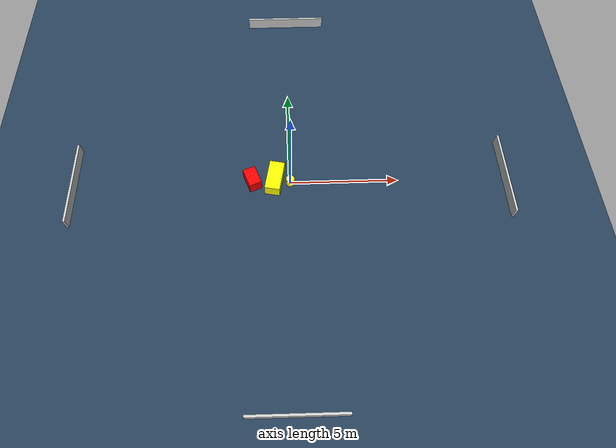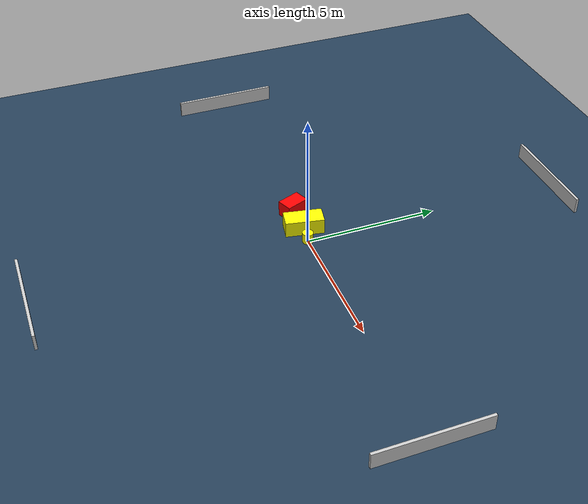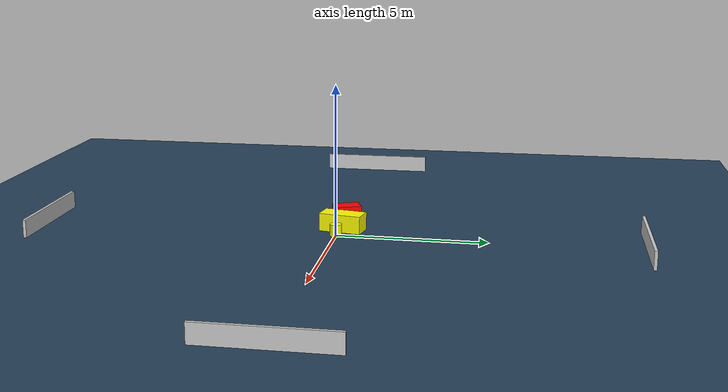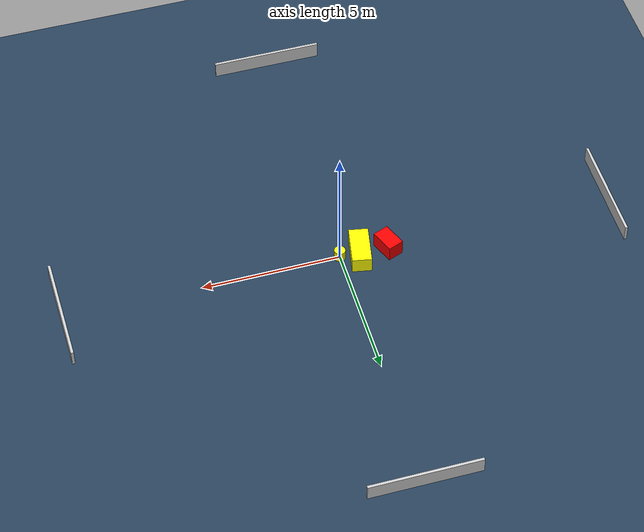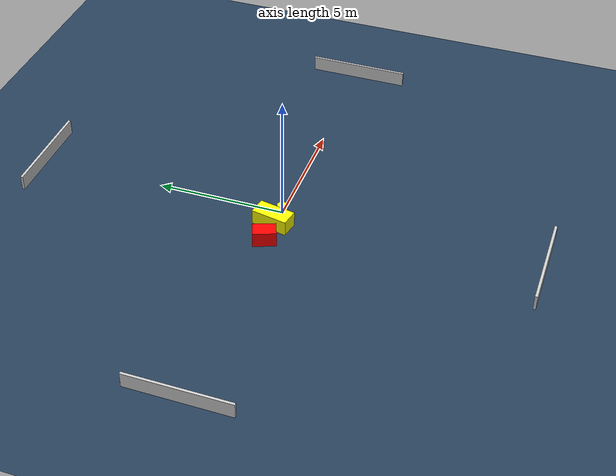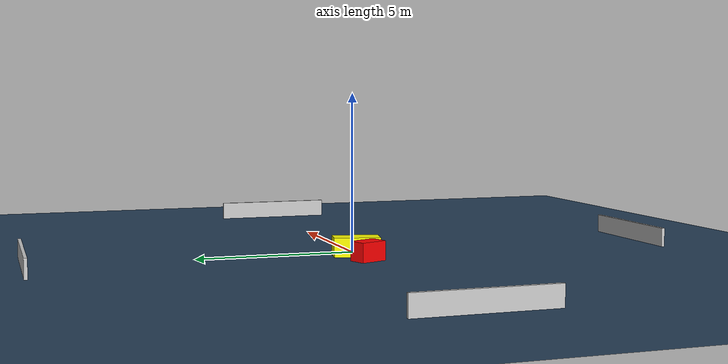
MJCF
<?xml version="1.0" ?>
<mujoco model="generated_environment">
  <option timestep="0.01" integrator="RK4" cone="elliptic"/>
  <default>
    <geom density="1"/>
  </default>
  <asset>
    <texture builtin="gradient" height="3072" name="skybox" rgb1="0.3 0.5 0.7" rgb2="0 0 0" type="skybox" width="512"/>
    <texture builtin="checker" height="300" name="groundplane" rgb1="0.2 0.3 0.4" rgb2="0.1 0.2 0.3" type="2d" width="300"/>
    <material name="groundplane" reflectance="0.2" texrepeat="5 5" texture="groundplane"/>
  </asset>
  <worldbody>
    <light dir="0 0 -1" directional="true" pos="0 0 1.5"/>
    <geom condim="3" friction="0.5 0.005 0.001" material="groundplane" name="floor" pos="0 0 0" size="0 0 0.05" type="plane"/>
    <body name="walls">
      <geom name="wall_1" condim="4" pos="-10.0 0.0 0.3" rgba="0.800000011920929 0.800000011920929 0.800000011920929 1.0" size="0.05 2.0 0.3" type="box"/>
      <geom name="wall_2" condim="4" pos="10.0 0.0 0.3" rgba="0.800000011920929 0.800000011920929 0.800000011920929 1.0" size="0.05 2.0 0.3" type="box"/>
      <geom name="wall_3" condim="4" pos="0.0 -10.0 0.3" rgba="0.800000011920929 0.800000011920929 0.800000011920929 1.0" size="2.0 0.05 0.3" type="box"/>
      <geom name="wall_4" condim="4" pos="0.0 10.0 0.3" rgba="0.800000011920929 0.800000011920929 0.800000011920929 1.0" size="2.0 0.05 0.3" type="box"/>
    </body>
    <body name="robot">
      <joint name="joint_x" type="slide" pos="0 0 0" axis="1 0 0"/>
      <joint name="joint_y" type="slide" pos="0 0 0" axis="0 1 0"/>
      <geom name="robot" type="cylinder" pos="0.0 0.0 0.2" size="0.2 0.2 0.0" mass="5.0" friction="1.0 0.005 0.0001" condim="4" rgba="1.0 1.0 0.0 1.0"/>
    </body>
    <body name="obstacle_1_movable">
      <geom name="obstacle_1_movable" condim="4" pos="-0.7115615894233471 0.11058664706119403 0.3" euler="0 0 79.08107984849875" friction="0.0 0.005 0.001" rgba="1.0 1.0 0.0 1.0" size="0.7174702817717176 0.34989846566463245 0.3" type="box" mass="0.1"/>
      <joint type="free"/>
    </body>
    <body name="obstacle_2_static">
      <geom name="obstacle_2_static" condim="4" pos="-1.755181906149613 0.08377540532682635 0.3" euler="0 0 201.63335728916022" friction="0.0 0.005 0.001" rgba="1.0 0.0 0.0 1.0" size="0.2938092465440888 0.44577223188374315 0.3" type="box"/>
    </body>
  </worldbody>
  <actuator>
    <motor name="actuator_x" joint="joint_x" gear="1" ctrlrange="-1 1"/>
    <motor name="actuator_y" joint="joint_y" gear="1" ctrlrange="-1 1"/>
  </actuator>
</mujoco>
